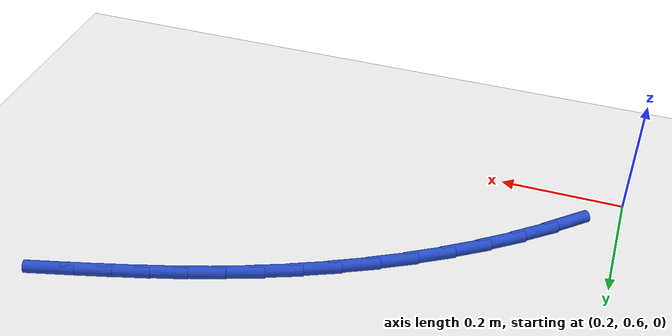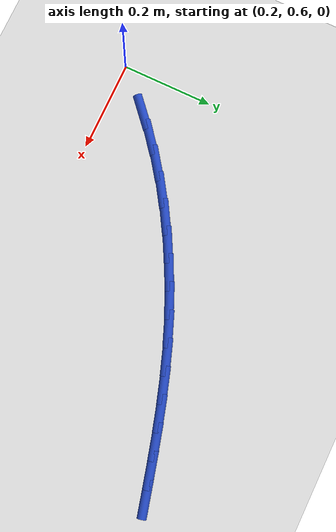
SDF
<sdf version="1.6">
 <world name="default">
  <model name="ground_plane">
   <static>1</static>
   <link name="link">
    <collision name="collision">
     <geometry><plane><normal>0 0 1</normal><size>100 100</size></plane></geometry>
     <surface><friction><ode><mu>100</mu><mu2>50</mu2></ode></friction></surface>
    </collision>
    <visual name="visual">
     <cast_shadows>0</cast_shadows>
     <geometry><plane><normal>0 0 1</normal><size>100 100</size></plane></geometry>
     <material>
      <script><uri>file://media/materials/scripts/gazebo.material</uri><name>Gazebo/WhiteGlow</name></script>
     </material>
    </visual>
   </link>
  </model>
  <model name="line">
   <link name="link_13">
    <pose>0.28278207679964473 0.6799092427002829 0.01 0 1.57 0.7268537138715101</pose>
    <collision name="collision">
     <geometry><cylinder><radius>0.01</radius><length>0.08</length></cylinder></geometry>
    </collision>
    <visual name="visual">
     <material>
      <script><name>Gazebo/Blue</name><uri>file://media/materials/scripts/gazebo.material</uri></script>
     </material>
     <geometry><cylinder><radius>0.01</radius><length>0.08</length></cylinder></geometry>
    </visual>
   </link>
   <link name="link_14">
    <pose>0.3266302495474126 0.7189019908236185 0.01 0 1.57 0.6734707120647092</pose>
    <collision name="collision">
     <geometry><cylinder><radius>0.01</radius><length>0.08</length></cylinder></geometry>
    </collision>
    <visual name="visual">
     <material>
      <script><name>Gazebo/Blue</name><uri>file://media/materials/scripts/gazebo.material</uri></script>
     </material>
     <geometry><cylinder><radius>0.01</radius><length>0.08</length></cylinder></geometry>
    </visual>
   </link>
   <link name="link_15">
    <pose>0.3727145604070057 0.7556735351185689 0.01 0 1.57 0.6233523727947209</pose>
    <collision name="collision">
     <geometry><cylinder><radius>0.01</radius><length>0.08</length></cylinder></geometry>
    </collision>
    <visual name="visual">
     <material>
      <script><name>Gazebo/Blue</name><uri>file://media/materials/scripts/gazebo.material</uri></script>
     </material>
     <geometry><cylinder><radius>0.01</radius><length>0.08</length></cylinder></geometry>
    </visual>
   </link>
   <link name="link_16">
    <pose>0.4207710996251785 0.7902253280738403 0.01 0 1.57 0.57618218348528</pose>
    <collision name="collision">
     <geometry><cylinder><radius>0.01</radius><length>0.08</length></cylinder></geometry>
    </collision>
    <visual name="visual">
     <material>
      <script><name>Gazebo/Blue</name><uri>file://media/materials/scripts/gazebo.material</uri></script>
     </material>
     <geometry><cylinder><radius>0.01</radius><length>0.08</length></cylinder></geometry>
    </visual>
   </link>
   <link name="link_17">
    <pose>0.47053595744868515 0.8225588221781382 0.01 0 1.57 0.5316304828139208</pose>
    <collision name="collision">
     <geometry><cylinder><radius>0.01</radius><length>0.08</length></cylinder></geometry>
    </collision>
    <visual name="visual">
     <material>
      <script><name>Gazebo/Blue</name><uri>file://media/materials/scripts/gazebo.material</uri></script>
     </material>
     <geometry><cylinder><radius>0.01</radius><length>0.08</length></cylinder></geometry>
    </visual>
   </link>
   <link name="link_18">
    <pose>0.5217452241242799 0.8526754699201682 0.01 0 1.57 0.48936338717541195</pose>
    <collision name="collision">
     <geometry><cylinder><radius>0.01</radius><length>0.08</length></cylinder></geometry>
    </collision>
    <visual name="visual">
     <material>
      <script><name>Gazebo/Blue</name><uri>file://media/materials/scripts/gazebo.material</uri></script>
     </material>
     <geometry><cylinder><radius>0.01</radius><length>0.08</length></cylinder></geometry>
    </visual>
   </link>
   <link name="link_19">
    <pose>0.574134989898717 0.8805767237886357 0.01 0 1.57 0.44904751405415533</pose>
    <collision name="collision">
     <geometry><cylinder><radius>0.01</radius><length>0.08</length></cylinder></geometry>
    </collision>
    <visual name="visual">
     <material>
      <script><name>Gazebo/Blue</name><uri>file://media/materials/scripts/gazebo.material</uri></script>
     </material>
     <geometry><cylinder><radius>0.01</radius><length>0.08</length></cylinder></geometry>
    </visual>
   </link>
   <link name="link_20">
    <pose>0.6274413450187506 0.9062640362722465 0.01 0 1.57 0.4103513505905944</pose>
    <collision name="collision">
     <geometry><cylinder><radius>0.01</radius><length>0.08</length></cylinder></geometry>
    </collision>
    <visual name="visual">
     <material>
      <script><name>Gazebo/Blue</name><uri>file://media/materials/scripts/gazebo.material</uri></script>
     </material>
     <geometry><cylinder><radius>0.01</radius><length>0.08</length></cylinder></geometry>
    </visual>
   </link>
   <link name="link_21">
    <pose>0.6814003797311352 0.9297388598597064 0.01 0 1.57 0.37296123107655915</pose>
    <collision name="collision">
     <geometry><cylinder><radius>0.01</radius><length>0.08</length></cylinder></geometry>
    </collision>
    <visual name="visual">
     <material>
      <script><name>Gazebo/Blue</name><uri>file://media/materials/scripts/gazebo.material</uri></script>
     </material>
     <geometry><cylinder><radius>0.01</radius><length>0.08</length></cylinder></geometry>
    </visual>
   </link>
   <link name="link_22">
    <pose>0.7357494458634278 0.9510042255560716 0.01 0 1.57 0.3381251433379115</pose>
    <collision name="collision">
     <geometry><cylinder><radius>0.01</radius><length>0.08</length></cylinder></geometry>
    </collision>
    <visual name="visual">
     <material>
      <script><name>Gazebo/Blue</name><uri>file://media/materials/scripts/gazebo.material</uri></script>
     </material>
     <geometry><cylinder><radius>0.01</radius><length>0.08</length></cylinder></geometry>
    </visual>
   </link>
   <link name="link_23">
    <pose>0.7903332223436099 0.9701974542846113 0.01 0 1.57 0.30872614281730326</pose>
    <collision name="collision">
     <geometry><cylinder><radius>0.01</radius><length>0.08</length></cylinder></geometry>
    </collision>
    <visual name="visual">
     <material>
      <script><name>Gazebo/Blue</name><uri>file://media/materials/scripts/gazebo.material</uri></script>
     </material>
     <geometry><cylinder><radius>0.01</radius><length>0.08</length></cylinder></geometry>
    </visual>
   </link>
   <link name="link_24">
    <pose>0.8451840492386136 0.9876906725200556 0.01 0 1.57 0.2854305361620614</pose>
    <collision name="collision">
     <geometry><cylinder><radius>0.01</radius><length>0.08</length></cylinder></geometry>
    </collision>
    <visual name="visual">
     <material>
      <script><name>Gazebo/Blue</name><uri>file://media/materials/scripts/gazebo.material</uri></script>
     </material>
     <geometry><cylinder><radius>0.01</radius><length>0.08</length></cylinder></geometry>
    </visual>
   </link>
   <link name="link_25">
    <pose>0.9003531848451769 1.003879677622897 0.01 0 1.57 0.26849085107716225</pose>
    <collision name="collision">
     <geometry><cylinder><radius>0.01</radius><length>0.08</length></cylinder></geometry>
    </collision>
    <visual name="visual">
     <material>
      <script><name>Gazebo/Blue</name><uri>file://media/materials/scripts/gazebo.material</uri></script>
     </material>
     <geometry><cylinder><radius>0.01</radius><length>0.08</length></cylinder></geometry>
    </visual>
   </link>
   <link name="link_26">
    <pose>0.9558918874600374 1.019160266953627 0.01 0 1.57 0.25802183128476586</pose>
    <collision name="collision">
     <geometry><cylinder><radius>0.01</radius><length>0.08</length></cylinder></geometry>
    </collision>
    <visual name="visual">
     <material>
      <script><name>Gazebo/Blue</name><uri>file://media/materials/scripts/gazebo.material</uri></script>
     </material>
     <geometry><cylinder><radius>0.01</radius><length>0.08</length></cylinder></geometry>
    </visual>
   </link>
   <link name="link_27">
    <pose>1.011851415379934 1.0339282378727386 0.01 0 1.57 0.2539357407484945</pose>
    <collision name="collision">
     <geometry><cylinder><radius>0.01</radius><length>0.08</length></cylinder></geometry>
    </collision>
    <visual name="visual">
     <material>
      <script><name>Gazebo/Blue</name><uri>file://media/materials/scripts/gazebo.material</uri></script>
     </material>
     <geometry><cylinder><radius>0.01</radius><length>0.08</length></cylinder></geometry>
    </visual>
   </link>
  </model>
 </world>
</sdf>
